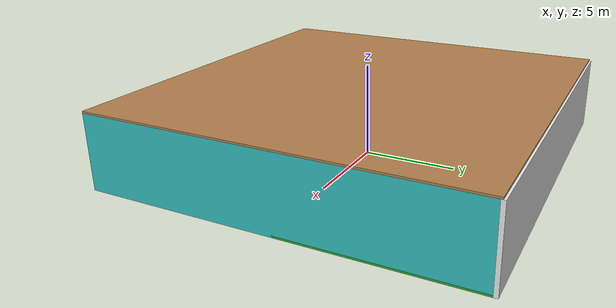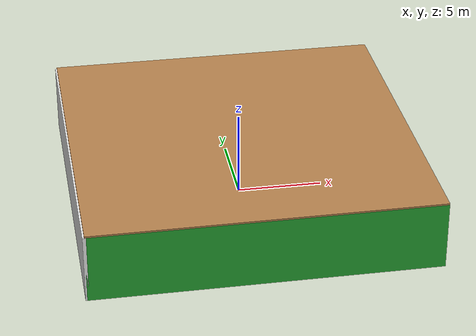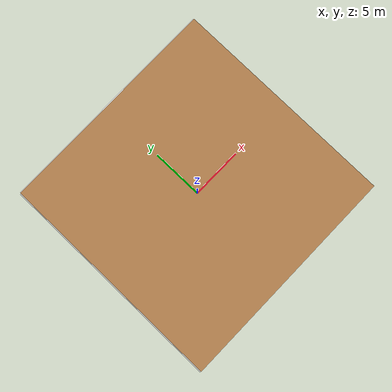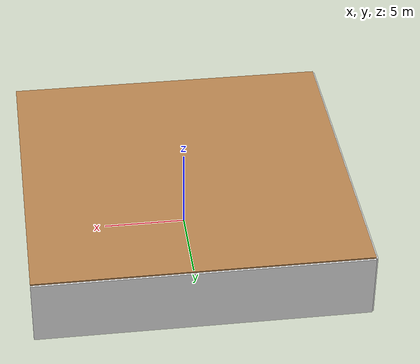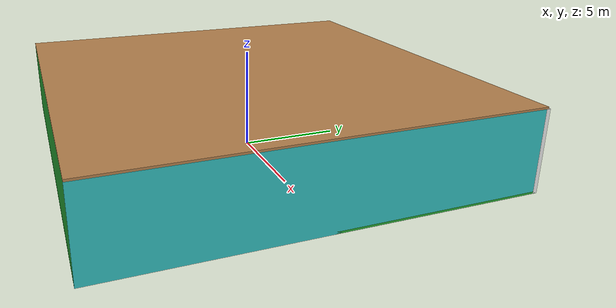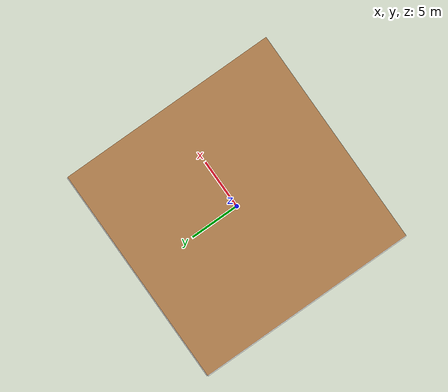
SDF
<sdf version="1.4">
 <world name="default">
  <physics type="ode">
   <max_step_size>0.001</max_step_size>
   <real_time_factor>1</real_time_factor>
   <real_time_update_rate>1000</real_time_update_rate>
   <gravity>0 0 -9.8</gravity>
  </physics>
  <scene><ambient>0.4 0.4 0.4 1</ambient><background>0.7 0.7 0.7 1</background><shadows>1</shadows></scene>
  <model name="Surrounding">
   <static>1</static>
   <link name="Ceiling">
    <collision name="Ceiling_Collision"><geometry><box><size>20 20 0.1</size></box></geometry></collision>
    <visual name="Ceiling_Visual">
     <geometry><box><size>20 20 0.1</size></box></geometry>
     <material>
      <script><uri>file://media/materials/scripts/gazebo.material</uri><name>Gazebo/Wood</name></script>
     </material>
    </visual>
    <pose>0 0 4.05 0 0 0</pose>
   </link>
   <link name="Wall_South">
    <collision name="Wall_South_Collision">
     <geometry><box><size>20 0 4</size></box></geometry>
     <pose>0 0 2 0 -0 0</pose>
    </collision>
    <visual name="Wall_South_Visual">
     <pose>0 0 2 0 -0 0</pose>
     <geometry><box><size>20 0 4</size></box></geometry>
     <material>
      <script><uri>file://media/materials/scripts/gazebo.material</uri><name>Gazebo/GreenGlow</name></script>
     </material>
    </visual>
    <velocity_decay><linear>0</linear><angular>0</angular></velocity_decay>
    <pose>0 -10 0 0 -0 0</pose>
   </link>
   <link name="Wall_East">
    <collision name="Wall_21_Collision">
     <geometry><box><size>20 0 4</size></box></geometry>
     <pose>0 0 2 0 -0 0</pose>
    </collision>
    <visual name="Wall_21_Visual">
     <pose>0 0 2 0 -0 0</pose>
     <geometry><box><size>20 0 4</size></box></geometry>
     <material>
      <script>
       <uri>file://media/materials/scripts/gazebo.material</uri>
       <name>Gazebo/TurquoiseGlowOutline</name>
      </script>
     </material>
    </visual>
    <velocity_decay><linear>0</linear><angular>0</angular></velocity_decay>
    <pose>10 0 0 0 -0 1.5708</pose>
   </link>
   <link name="Wall_North">
    <collision name="Wall_22_Collision">
     <geometry><box><size>20 0.2 4</size></box></geometry>
     <pose>0 0 2 0 -0 0</pose>
    </collision>
    <visual name="Wall_22_Visual">
     <pose>0 0 2 0 -0 0</pose>
     <geometry><box><size>20 0.2 4</size></box></geometry>
     <material>
      <script><uri>file://media/materials/scripts/gazebo.material</uri><name>Gazebo/WhiteGlow</name></script>
     </material>
    </visual>
    <velocity_decay><linear>0</linear><angular>0</angular></velocity_decay>
    <pose>0 10 0 0 -0 0</pose>
   </link>
   <link name="Wall_West">
    <collision name="Wall_23_Collision">
     <geometry><box><size>20 0.2 4</size></box></geometry>
     <pose>0 0 2 0 -0 0</pose>
    </collision>
    <visual name="Wall_23_Visual">
     <pose>0 0 2 0 -0 0</pose>
     <geometry><box><size>20 0.2 4</size></box></geometry>
     <material>
      <script><uri>file://media/materials/scripts/gazebo.material</uri><name>Gazebo/WhiteGlow</name></script>
     </material>
    </visual>
    <velocity_decay><linear>0</linear><angular>0</angular></velocity_decay>
    <pose>-10 0 0 0 0 -1.5708</pose>
   </link>
   <link name="Ground_link">
    <collision name="collision">
     <pose>0 0 .05 0 -0 0</pose>
     <geometry><box><size>20 20 0.1</size></box></geometry>
    </collision>
    <visual name="visual">
     <pose>0 0 .05 0 -0 0</pose>
     <geometry><box><size>20 20 0.1</size></box></geometry>
     <material>
      <script><uri>file://media/materials/scripts/gazebo.material</uri><name>Gazebo/Green</name></script>
     </material>
    </visual>
   </link>
   <static>1</static>
  </model>
  <spherical_coordinates>
   <surface_model>EARTH_WGS84</surface_model>
   <latitude_deg>0</latitude_deg>
   <longitude_deg>0</longitude_deg>
   <elevation>0</elevation>
   <heading_deg>0</heading_deg>
  </spherical_coordinates>
  <light name="lightball_0" type="diffuse">
   <diffuse>0.8 0.8 0.8 1</diffuse>
   <specular>0.2 0.2 0.2 1</specular>
   <attenuation>
    <range>100</range>
    <constant>0.7</constant>
    <linear>0.01</linear>
    <quadratic>0.001</quadratic>
   </attenuation>
   <direction>-0.5 0.1 -0.9</direction>
   <pose>-5.8846141867 5.49005384524 0.952920597322 0 0 0</pose>
  </light>
  <light name="lightball_1" type="diffuse">
   <diffuse>0.8 0.8 0.8 1</diffuse>
   <specular>0.2 0.2 0.2 1</specular>
   <attenuation>
    <range>100</range>
    <constant>0.7</constant>
    <linear>0.01</linear>
    <quadratic>0.001</quadratic>
   </attenuation>
   <direction>-0.5 0.1 -0.9</direction>
   <pose>-2.54415249973 -7.18366362308 1.34626462468 0 0 0</pose>
  </light>
  <light name="lightball_2" type="diffuse">
   <diffuse>0.8 0.8 0.8 1</diffuse>
   <specular>0.2 0.2 0.2 1</specular>
   <attenuation>
    <range>100</range>
    <constant>0.7</constant>
    <linear>0.01</linear>
    <quadratic>0.001</quadratic>
   </attenuation>
   <direction>-0.5 0.1 -0.9</direction>
   <pose>-1.57804268413 -4.29837716722 3.67829768939 0 0 0</pose>
  </light>
  <light name="lightball_3" type="diffuse">
   <diffuse>0.8 0.8 0.8 1</diffuse>
   <specular>0.2 0.2 0.2 1</specular>
   <attenuation>
    <range>100</range>
    <constant>0.7</constant>
    <linear>0.01</linear>
    <quadratic>0.001</quadratic>
   </attenuation>
   <direction>-0.5 0.1 -0.9</direction>
   <pose>-8.68914256085 7.23241619193 3.83988341118 0 0 0</pose>
  </light>
  <light name="lightball_4" type="diffuse">
   <diffuse>0.8 0.8 0.8 1</diffuse>
   <specular>0.2 0.2 0.2 1</specular>
   <attenuation>
    <range>100</range>
    <constant>0.7</constant>
    <linear>0.01</linear>
    <quadratic>0.001</quadratic>
   </attenuation>
   <direction>-0.5 0.1 -0.9</direction>
   <pose>5.95616771101 -5.22009701136 1.09616832679 0 0 0</pose>
  </light>
  <light name="lightball_5" type="diffuse">
   <diffuse>0.8 0.8 0.8 1</diffuse>
   <specular>0.2 0.2 0.2 1</specular>
   <attenuation>
    <range>100</range>
    <constant>0.7</constant>
    <linear>0.01</linear>
    <quadratic>0.001</quadratic>
   </attenuation>
   <direction>-0.5 0.1 -0.9</direction>
   <pose>5.93810524971 -3.74960640897 3.68639660652 0 0 0</pose>
  </light>
  <light name="lightball_6" type="diffuse">
   <diffuse>0.8 0.8 0.8 1</diffuse>
   <specular>0.2 0.2 0.2 1</specular>
   <attenuation>
    <range>100</range>
    <constant>0.7</constant>
    <linear>0.01</linear>
    <quadratic>0.001</quadratic>
   </attenuation>
   <direction>-0.5 0.1 -0.9</direction>
   <pose>-0.377556279606 -7.89260610803 2.21946911883 0 0 0</pose>
  </light>
  <light name="lightball_7" type="diffuse">
   <diffuse>0.8 0.8 0.8 1</diffuse>
   <specular>0.2 0.2 0.2 1</specular>
   <attenuation>
    <range>100</range>
    <constant>0.7</constant>
    <linear>0.01</linear>
    <quadratic>0.001</quadratic>
   </attenuation>
   <direction>-0.5 0.1 -0.9</direction>
   <pose>9.47368438126 5.89657659538 0.859828929965 0 0 0</pose>
  </light>
  <light name="lightball_8" type="diffuse">
   <diffuse>0.8 0.8 0.8 1</diffuse>
   <specular>0.2 0.2 0.2 1</specular>
   <attenuation>
    <range>100</range>
    <constant>0.7</constant>
    <linear>0.01</linear>
    <quadratic>0.001</quadratic>
   </attenuation>
   <direction>-0.5 0.1 -0.9</direction>
   <pose>2.99883066004 -8.55647282978 1.18480127069 0 0 0</pose>
  </light>
  <light name="lightball_9" type="diffuse">
   <diffuse>0.8 0.8 0.8 1</diffuse>
   <specular>0.2 0.2 0.2 1</specular>
   <attenuation>
    <range>100</range>
    <constant>0.7</constant>
    <linear>0.01</linear>
    <quadratic>0.001</quadratic>
   </attenuation>
   <direction>-0.5 0.1 -0.9</direction>
   <pose>-8.40156740105 -0.0139613621089 2.00383933242 0 0 0</pose>
  </light>
  <light name="lightball_10" type="diffuse">
   <diffuse>0.8 0.8 0.8 1</diffuse>
   <specular>0.2 0.2 0.2 1</specular>
   <attenuation>
    <range>100</range>
    <constant>0.7</constant>
    <linear>0.01</linear>
    <quadratic>0.001</quadratic>
   </attenuation>
   <direction>-0.5 0.1 -0.9</direction>
   <pose>-1.03917837632 7.21785836795 3.81126780472 0 0 0</pose>
  </light>
  <include><uri>model://table</uri><pose>-3.64961315349 3.74238195567 0 0 0 2.44270970484</pose></include>
  <include>
   <uri>model://textured_shapes</uri>
   <pose>2.46962009353 -1.4107207014 0 0 0 1.94953306721</pose>
  </include>
 </world>
</sdf>

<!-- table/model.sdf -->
<sdf version="1.5">
  <model name="table">
    <static>true</static>
    <link name="link">
      <collision name="surface">
        <pose>0 0 1.0 0 0 0</pose>
        <geometry>
          <box>
            <size>1.5 0.8 0.03</size>
          </box>
        </geometry>
        <surface>
          <friction>
            <ode>
              <mu>0.6</mu>
              <mu2>0.6</mu2>
            </ode>
          </friction>
        </surface>
      </collision>
      <visual name="visual1">
        <pose>0 0 1.0 0 0 0</pose>
        <geometry>
          <box>
            <size>1.5 0.8 0.03</size>
          </box>
        </geometry>
        <material>
          <script>
            <uri>model://media/materials/scripts/gazebo.material</uri>
            <name>Gazebo/Wood</name>
          </script>
        </material>
      </visual>
      <collision name="front_left_leg">
        <pose>0.68 0.38 0.5 0 0 0</pose>
        <geometry>
          <cylinder>
            <radius>0.02</radius>
            <length>1.0</length>
          </cylinder>
        </geometry>
      </collision>
      <visual name="front_left_leg">
        <pose>0.68 0.38 0.5 0 0 0</pose>
        <geometry>
          <cylinder>
            <radius>0.02</radius>
            <length>1.0</length>
          </cylinder>
        </geometry>
        <material>
          <script>
            <uri>model://media/materials/scripts/gazebo.material</uri>
            <name>Gazebo/Grey</name>
          </script>
        </material>
      </visual>
      <collision name="front_right_leg">
        <pose>0.68 -0.38 0.5 0 0 0</pose>
        <geometry>
          <cylinder>
            <radius>0.02</radius>
            <length>1.0</length>
          </cylinder>
        </geometry>
      </collision>
      <visual name="front_right_leg">
        <pose>0.68 -0.38 0.5 0 0 0</pose>
        <geometry>
          <cylinder>
            <radius>0.02</radius>
            <length>1.0</length>
          </cylinder>
        </geometry>
        <material>
          <script>
            <uri>model://media/materials/scripts/gazebo.material</uri>
            <name>Gazebo/Grey</name>
          </script>
        </material>
      </visual>
      <collision name="back_right_leg">
        <pose>-0.68 -0.38 0.5 0 0 0</pose>
        <geometry>
          <cylinder>
            <radius>0.02</radius>
            <length>1.0</length>
          </cylinder>
        </geometry>
      </collision>
      <visual name="back_right_leg">
        <pose>-0.68 -0.38 0.5 0 0 0</pose>
        <geometry>
          <cylinder>
            <radius>0.02</radius>
            <length>1.0</length>
          </cylinder>
        </geometry>
        <material>
          <script>
            <uri>model://media/materials/scripts/gazebo.material</uri>
            <name>Gazebo/Grey</name>
          </script>
        </material>
      </visual>
      <collision name="back_left_leg">
        <pose>-0.68 0.38 0.5 0 0 0</pose>
        <geometry>
          <cylinder>
            <radius>0.02</radius>
            <length>1.0</length>
          </cylinder>
        </geometry>
      </collision>
      <visual name="back_left_leg">
        <pose>-0.68 0.38 0.5 0 0 0</pose>
        <geometry>
          <cylinder>
            <radius>0.02</radius>
            <length>1.0</length>
          </cylinder>
        </geometry>
        <material>
          <script>
            <uri>model://media/materials/scripts/gazebo.material</uri>
            <name>Gazebo/Grey</name>
          </script>
        </material>
      </visual>
    </link>
  </model>
</sdf>

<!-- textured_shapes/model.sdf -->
<sdf version="1.6">
  <model name="textured_shapes">
    <pose>0 0 0.5 0 0 0</pose>
    <link name="box">
      <pose>0 -1.5 0 0 0 0</pose>
      <collision name="collision">
        <geometry>
          <box>
            <size>1 1 1</size>
          </box>
        </geometry>
      </collision>
      <visual name="visual">
        <geometry>
          <box>
            <size>1 1 1</size>
          </box>
        </geometry>
        <material>
          <script>
            <uri>model://../model_source/models/textured_shapes/materials/scripts</uri>
            <uri>model://../model_source/models/textured_shapes/materials/textures</uri>
            <name>TexturedShape/Squares</name>
          </script>
        </material>
      </visual>
    </link>
    <link name="sphere">
      <collision name="collision">
        <geometry>
          <sphere>
            <radius>0.5</radius>
          </sphere>
        </geometry>
      </collision>
      <visual name="visual">
        <geometry>
          <sphere>
            <radius>0.5</radius>
          </sphere>
        </geometry>
        <material>
          <script>
            <uri>model://../model_source/models/textured_shapes/materials/scripts</uri>
            <uri>model://../model_source/models/textured_shapes/materials/textures</uri>
            <name>TexturedShape/Squares</name>
          </script>
        </material>
      </visual>
    </link>
    <link name="cylinder">
      <pose>0 1.5 0 0 0 0</pose>
      <collision name="collision">
        <geometry>
          <cylinder>
            <radius>0.5</radius>
            <length>1</length>
          </cylinder>
        </geometry>
      </collision>
      <visual name="visual">
        <geometry>
          <cylinder>
            <radius>0.5</radius>
            <length>1</length>
          </cylinder>
        </geometry>
        <material>
          <script>
            <uri>model://../model_source/models/textured_shapes/materials/scripts</uri>
            <uri>model://../model_source/models/textured_shapes/materials/textures</uri>
            <name>TexturedShape/Squares</name>
          </script>
        </material>
      </visual>
    </link>
  </model>
</sdf>
